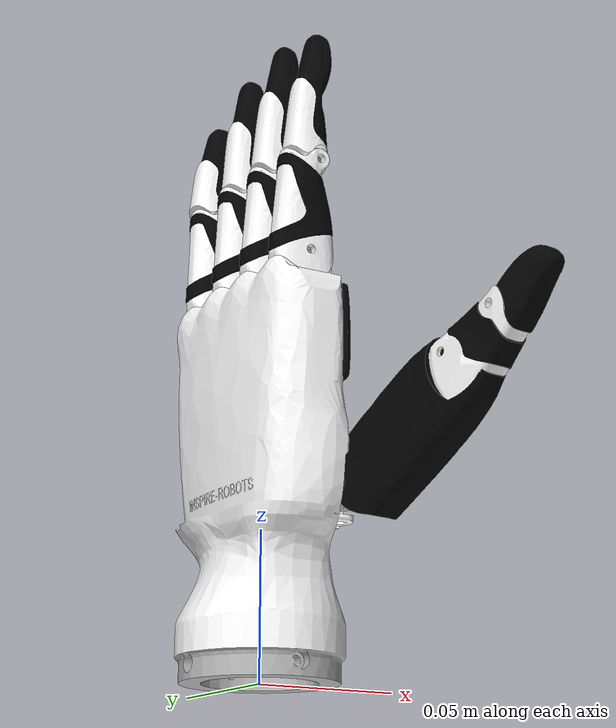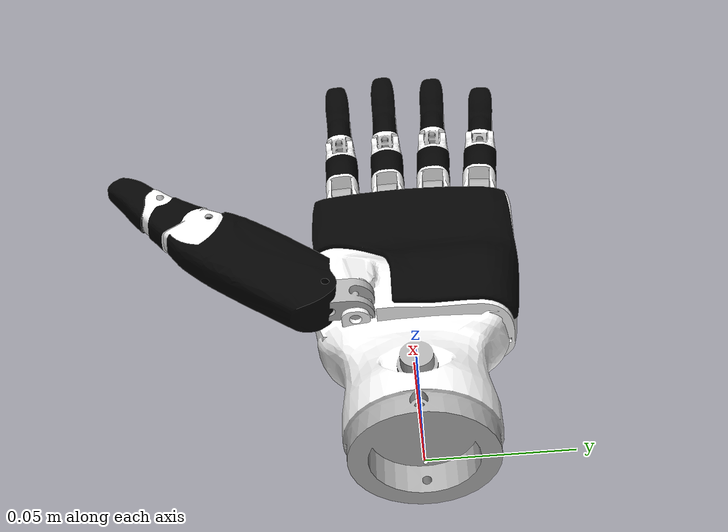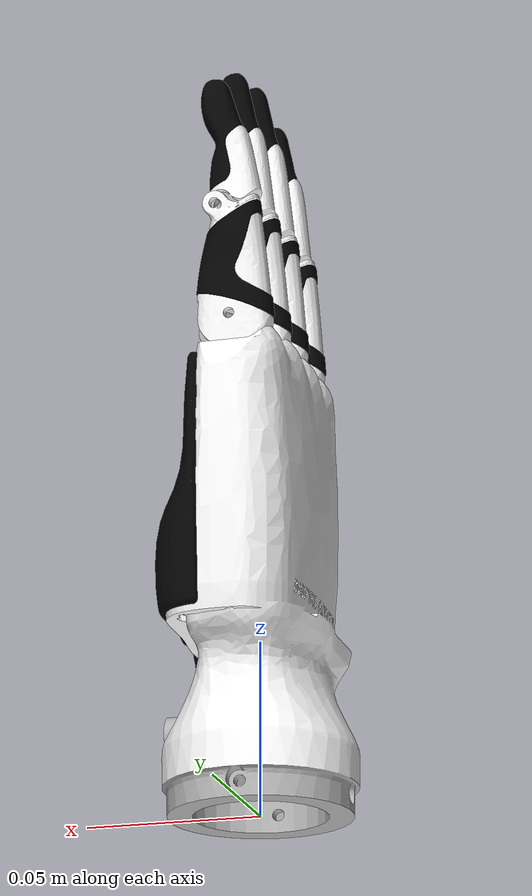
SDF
<sdf version='1.7'>
  <model name='inspire_hand_left'>
    <link name='base'>
      <inertial>
        <pose>0.002526 0.00196 0.066047 0 -0 0</pose>
        <mass>0.14143</mass>
        <inertia>
          <ixx>0.00012281</ixx>
          <ixy>1.77078e-06</ixy>
          <ixz>2.1711e-06</ixz>
          <iyy>7.6663e-05</iyy>
          <iyz>-1.65511e-06</iyz>
          <izz>8.3832e-05</izz>
        </inertia>
      </inertial>
      <collision name='base_fixed_joint_lump__hand_base_link_collision'>
        <pose>0 0 0.0136 -6e-06 0 3.14159</pose>
        <geometry>
          <cylinder>
            <length>0.0278</length>
            <radius>0.028</radius>
          </cylinder>
        </geometry>
        <surface>
          <contact>
            <ode/>
          </contact>
          <friction>
            <ode/>
          </friction>
        </surface>
      </collision>
      <collision name='base_fixed_joint_lump__hand_base_link_collision_1'>
        <pose>0.0032 -0 0.038 -1.5708 -0 3.14159</pose>
        <geometry>
          <box>
            <size>0.0391 0.0202 0.0574</size>
          </box>
        </geometry>
        <surface>
          <contact>
            <ode/>
          </contact>
          <friction>
            <ode/>
          </friction>
        </surface>
      </collision>
      <collision name='base_fixed_joint_lump__hand_base_link_collision_2'>
        <pose>0.0032 -0 0.0682 -1.5708 -0 3.14159</pose>
        <geometry>
          <box>
            <size>0.0391 0.04 0.0814</size>
          </box>
        </geometry>
        <surface>
          <contact>
            <ode/>
          </contact>
          <friction>
            <ode/>
          </friction>
        </surface>
      </collision>
      <collision name='base_fixed_joint_lump__hand_base_link_collision_3'>
        <pose>0 0 0.1081 -1.5708 -0 3.14159</pose>
        <geometry>
          <box>
            <size>0.0322 0.04 0.0814</size>
          </box>
        </geometry>
        <surface>
          <contact>
            <ode/>
          </contact>
          <friction>
            <ode/>
          </friction>
        </surface>
      </collision>
      <collision name='base_fixed_joint_lump__hand_base_link_collision_4'>
        <pose>0.0016 0.0309 0.134 -1.5708 -0 3.14159</pose>
        <geometry>
          <box>
            <size>0.0125 0.0111 0.0089</size>
          </box>
        </geometry>
        <surface>
          <contact>
            <ode/>
          </contact>
          <friction>
            <ode/>
          </friction>
        </surface>
      </collision>
      <collision name='base_fixed_joint_lump__hand_base_link_collision_5'>
        <pose>0.0016 0.0118 0.134 -1.5708 -0 3.14159</pose>
        <geometry>
          <box>
            <size>0.0125 0.0111 0.0089</size>
          </box>
        </geometry>
        <surface>
          <contact>
            <ode/>
          </contact>
          <friction>
            <ode/>
          </friction>
        </surface>
      </collision>
      <collision name='base_fixed_joint_lump__hand_base_link_collision_6'>
        <pose>0.0016 -0.007 0.134 -1.5708 -0 3.14159</pose>
        <geometry>
          <box>
            <size>0.0125 0.0111 0.0089</size>
          </box>
        </geometry>
        <surface>
          <contact>
            <ode/>
          </contact>
          <friction>
            <ode/>
          </friction>
        </surface>
      </collision>
      <collision name='base_fixed_joint_lump__hand_base_link_collision_7'>
        <pose>0.0016 -0.0262 0.134 -1.5708 -0 3.14159</pose>
        <geometry>
          <box>
            <size>0.0125 0.0111 0.0089</size>
          </box>
        </geometry>
        <surface>
          <contact>
            <ode/>
          </contact>
          <friction>
            <ode/>
          </friction>
        </surface>
      </collision>
      <visual name='base_fixed_joint_lump__hand_base_link_visual'>
        <pose>0 0 0 -1.5708 -0 3.14159</pose>
        <geometry>
          <mesh>
            <scale>1 1 1</scale>
            <uri>model://inspire_hand/meshes/visual/left_base_link.glb</uri>
          </mesh>
        </geometry>
      </visual>
      <self_collide>0</self_collide>
      <surface>
        <friction>
          <ode>
            <mu>0.5</mu>
            <mu2>0.5</mu2>
          </ode>
        </friction>
        <contact>
          <ode>
            <kp>1000000.0</kp>
            <kd>10.0</kd>
          </ode>
        </contact>
      </surface>
    </link>
    <joint name='index_proximal_joint' type='revolute'>
      <pose relative_to='base'>-0.000285 -0.032268 0.13653 -1.6057 -0 3.14159</pose>
      <parent>base</parent>
      <child>index_proximal</child>
      <axis>
        <xyz>0 0 -1</xyz>
        <limit>
          <lower>0</lower>
          <upper>1.47</upper>
          <effort>1</effort>
          <velocity>0.5</velocity>
        </limit>
        <dynamics>
          <spring_reference>0</spring_reference>
          <spring_stiffness>0</spring_stiffness>
        </dynamics>
      </axis>
    </joint>
    <link name='index_proximal'>
      <pose relative_to='index_proximal_joint'>0 0 0 0 -0 0</pose>
      <inertial>
        <pose>0.001226 -0.011942 -0.006 0 -0 0</pose>
        <mass>0.0042403</mass>
        <inertia>
          <ixx>6.6232e-07</ixx>
          <ixy>1.5775e-08</ixy>
          <ixz>1.8515e-12</ixz>
          <iyy>2.1146e-07</iyy>
          <iyz>5.0828e-12</iyz>
          <izz>6.9398e-07</izz>
        </inertia>
      </inertial>
      <collision name='index_proximal_collision'>
        <pose>0 0 0 0 -0 0</pose>
        <geometry>
          <mesh>
            <scale>1 1 1</scale>
            <uri>model://inspire_hand/meshes/collision/left_index_proximal.obj</uri>
          </mesh>
        </geometry>
        <surface>
          <contact>
            <ode/>
          </contact>
          <friction>
            <ode/>
          </friction>
        </surface>
      </collision>
      <visual name='index_proximal_visual'>
        <pose>0 0 0 0 -0 0</pose>
        <geometry>
          <mesh>
            <scale>1 1 1</scale>
            <uri>model://inspire_hand/meshes/visual/left_index_proximal.glb</uri>
          </mesh>
        </geometry>
      </visual>
      <self_collide>0</self_collide>
      <surface>
        <friction>
          <ode>
            <mu>0.5</mu>
            <mu2>0.5</mu2>
          </ode>
        </friction>
        <contact>
          <ode>
            <kp>1000000.0</kp>
            <kd>10.0</kd>
          </ode>
        </contact>
      </surface>
    </link>
    <joint name='index_intermediate_joint' type='revolute'>
      <pose relative_to='index_proximal'>-0.002614 -0.032026 -0.001 0 -0 0</pose>
      <parent>index_proximal</parent>
      <child>index_intermediate</child>
      <axis>
        <xyz>0 0 -1</xyz>
        <limit>
          <lower>-0.04545</lower>
          <upper>1.56</upper>
          <effort>1</effort>
          <velocity>0.5</velocity>
        </limit>
        <dynamics>
          <spring_reference>0</spring_reference>
          <spring_stiffness>0</spring_stiffness>
        </dynamics>
      </axis>
    </joint>
    <link name='index_intermediate'>
      <pose relative_to='index_intermediate_joint'>0 0 0 0 -0 0</pose>
      <inertial>
        <pose>0.00197 -0.019589 -0.005 0 -0 0</pose>
        <mass>0.0045683</mass>
        <inertia>
          <ixx>7.6111e-07</ixx>
          <ixy>-8.7637e-08</ixy>
          <ixz>-3.7751e-13</ixz>
          <iyy>9.6076e-08</iyy>
          <iyz>-9.9444e-13</iyz>
          <izz>7.8179e-07</izz>
        </inertia>
      </inertial>
      <collision name='index_intermediate_collision'>
        <pose>0 0 0 0 -0 0</pose>
        <geometry>
          <mesh>
            <scale>1 1 1</scale>
            <uri>model://inspire_hand/meshes/collision/left_index_intermediate.obj</uri>
          </mesh>
        </geometry>
        <surface>
          <contact>
            <ode/>
          </contact>
          <friction>
            <ode/>
          </friction>
        </surface>
      </collision>
      <visual name='index_intermediate_visual'>
        <pose>0 0 0 0 -0 0</pose>
        <geometry>
          <mesh>
            <scale>1 1 1</scale>
            <uri>model://inspire_hand/meshes/visual/left_index_intermediate.glb</uri>
          </mesh>
        </geometry>
      </visual>
      <self_collide>0</self_collide>
      <surface>
        <friction>
          <ode>
            <mu>0.5</mu>
            <mu2>0.5</mu2>
          </ode>
        </friction>
        <contact>
          <ode>
            <kp>1000000.0</kp>
            <kd>10.0</kd>
          </ode>
        </contact>
      </surface>
    </link>
    <joint name='middle_proximal_joint' type='revolute'>
      <pose relative_to='base'>-0.000285 -0.01295 0.1371 -1.5708 -0 3.14159</pose>
      <parent>base</parent>
      <child>middle_proximal</child>
      <axis>
        <xyz>0 0 -1</xyz>
        <limit>
          <lower>0</lower>
          <upper>1.47</upper>
          <effort>1</effort>
          <velocity>0.5</velocity>
        </limit>
        <dynamics>
          <spring_reference>0</spring_reference>
          <spring_stiffness>0</spring_stiffness>
        </dynamics>
      </axis>
    </joint>
    <link name='middle_proximal'>
      <pose relative_to='middle_proximal_joint'>0 0 0 0 -0 0</pose>
      <inertial>
        <pose>0.001297 -0.011934 -0.006 0 -0 0</pose>
        <mass>0.0042403</mass>
        <inertia>
          <ixx>6.6211e-07</ixx>
          <ixy>1.8461e-08</ixy>
          <ixz>1.8002e-12</ixz>
          <iyy>2.1167e-07</iyy>
          <iyz>6.6808e-12</iyz>
          <izz>6.9397e-07</izz>
        </inertia>
      </inertial>
      <collision name='middle_proximal_collision'>
        <pose>0 0 0 0 -0 0</pose>
        <geometry>
          <mesh>
            <scale>1 1 1</scale>
            <uri>model://inspire_hand/meshes/collision/left_index_proximal.obj</uri>
          </mesh>
        </geometry>
        <surface>
          <contact>
            <ode/>
          </contact>
          <friction>
            <ode/>
          </friction>
        </surface>
      </collision>
      <visual name='middle_proximal_visual'>
        <pose>0 0 0 0 -0 0</pose>
        <geometry>
          <mesh>
            <scale>1 1 1</scale>
            <uri>model://inspire_hand/meshes/visual/left_index_proximal.glb</uri>
          </mesh>
        </geometry>
      </visual>
      <self_collide>0</self_collide>
      <surface>
        <friction>
          <ode>
            <mu>0.5</mu>
            <mu2>0.5</mu2>
          </ode>
        </friction>
        <contact>
          <ode>
            <kp>1000000.0</kp>
            <kd>10.0</kd>
          </ode>
        </contact>
      </surface>
    </link>
    <joint name='middle_intermediate_joint' type='revolute'>
      <pose relative_to='middle_proximal'>-0.002423 -0.032041 -0.001 0 -0 0</pose>
      <parent>middle_proximal</parent>
      <child>middle_intermediate</child>
      <axis>
        <xyz>0 0 -1</xyz>
        <limit>
          <lower>-0.04545</lower>
          <upper>1.56</upper>
          <effort>1</effort>
          <velocity>0.5</velocity>
        </limit>
        <dynamics>
          <spring_reference>0</spring_reference>
          <spring_stiffness>0</spring_stiffness>
        </dynamics>
      </axis>
    </joint>
    <link name='middle_intermediate'>
      <pose relative_to='middle_intermediate_joint'>0 0 0 0 -0 0</pose>
      <inertial>
        <pose>0.001921 -0.020796 -0.005 0 -0 0</pose>
        <mass>0.0050396</mass>
        <inertia>
          <ixx>9.5822e-07</ixx>
          <ixy>-1.1425e-07</ixy>
          <ixz>-2.4791e-12</ixz>
          <iyy>1.0646e-07</iyy>
          <iyz>-5.9173e-12</iyz>
          <izz>9.8384e-07</izz>
        </inertia>
      </inertial>
      <collision name='middle_intermediate_collision'>
        <pose>0 0 0 0 -0 0</pose>
        <geometry>
          <mesh>
            <scale>1 1 1</scale>
            <uri>model://inspire_hand/meshes/collision/left_middle_intermediate.obj</uri>
          </mesh>
        </geometry>
        <surface>
          <contact>
            <ode/>
          </contact>
          <friction>
            <ode/>
          </friction>
        </surface>
      </collision>
      <visual name='middle_intermediate_visual'>
        <pose>0 0 0 0 -0 0</pose>
        <geometry>
          <mesh>
            <scale>1 1 1</scale>
            <uri>model://inspire_hand/meshes/visual/left_middle_intermediate.glb</uri>
          </mesh>
        </geometry>
      </visual>
      <self_collide>0</self_collide>
      <surface>
        <friction>
          <ode>
            <mu>0.5</mu>
            <mu2>0.5</mu2>
          </ode>
        </friction>
        <contact>
          <ode>
            <kp>1000000.0</kp>
            <kd>10.0</kd>
          </ode>
        </contact>
      </surface>
    </link>
    <joint name='pinky_proximal_joint' type='revolute'>
      <pose relative_to='base'>-0.000285 0.025488 0.13571 -1.46608 -0 3.14159</pose>
      <parent>base</parent>
      <child>pinky_proximal</child>
      <axis>
        <xyz>0 0 -1</xyz>
        <limit>
          <lower>0</lower>
          <upper>1.47</upper>
          <effort>1</effort>
          <velocity>0.5</velocity>
        </limit>
        <dynamics>
          <spring_reference>0</spring_reference>
          <spring_stiffness>0</spring_stiffness>
        </dynamics>
      </axis>
    </joint>
    <link name='pinky_proximal'>
      <pose relative_to='pinky_proximal_joint'>0 0 0 0 -0 0</pose>
      <inertial>
        <pose>0.001297 -0.011934 -0.006 0 -0 0</pose>
        <mass>0.0042403</mass>
        <inertia>
          <ixx>6.6211e-07</ixx>
          <ixy>1.8461e-08</ixy>
          <ixz>1.6907e-12</ixz>
          <iyy>2.1167e-07</iyy>
          <iyz>6.9334e-12</iyz>
          <izz>6.9397e-07</izz>
        </inertia>
      </inertial>
      <collision name='pinky_proximal_collision'>
        <pose>0 0 0 0 -0 0</pose>
        <geometry>
          <mesh>
            <scale>1 1 1</scale>
            <uri>model://inspire_hand/meshes/collision/left_index_proximal.obj</uri>
          </mesh>
        </geometry>
        <surface>
          <contact>
            <ode/>
          </contact>
          <friction>
            <ode/>
          </friction>
        </surface>
      </collision>
      <visual name='pinky_proximal_visual'>
        <pose>0 0 0 0 -0 0</pose>
        <geometry>
          <mesh>
            <scale>1 1 1</scale>
            <uri>model://inspire_hand/meshes/visual/left_index_proximal.glb</uri>
          </mesh>
        </geometry>
      </visual>
      <self_collide>0</self_collide>
      <surface>
        <friction>
          <ode>
            <mu>0.5</mu>
            <mu2>0.5</mu2>
          </ode>
        </friction>
        <contact>
          <ode>
            <kp>1000000.0</kp>
            <kd>10.0</kd>
          </ode>
        </contact>
      </surface>
    </link>
    <joint name='pinky_intermediate_joint' type='revolute'>
      <pose relative_to='pinky_proximal'>-0.002423 -0.032041 -0.001 0 -0 0</pose>
      <parent>pinky_proximal</parent>
      <child>pinky_intermediate</child>
      <axis>
        <xyz>0 0 -1</xyz>
        <limit>
          <lower>-0.04545</lower>
          <upper>1.56</upper>
          <effort>1</effort>
          <velocity>0.5</velocity>
        </limit>
        <dynamics>
          <spring_reference>0</spring_reference>
          <spring_stiffness>0</spring_stiffness>
        </dynamics>
      </axis>
    </joint>
    <link name='pinky_intermediate'>
      <pose relative_to='pinky_intermediate_joint'>0 0 0 0 -0 0</pose>
      <inertial>
        <pose>0.002475 -0.016203 -0.005003 0 -0 0</pose>
        <mass>0.0035996</mass>
        <inertia>
          <ixx>4.3913e-07</ixx>
          <ixy>-4.1418e-08</ixy>
          <ixz>3.7168e-11</ixz>
          <iyy>7.0247e-08</iyy>
          <iyz>-5.8613e-11</iyz>
          <izz>4.4867e-07</izz>
        </inertia>
      </inertial>
      <collision name='pinky_intermediate_collision'>
        <pose>0 0 0 0 -0 0</pose>
        <geometry>
          <mesh>
            <scale>1 1 1</scale>
            <uri>model://inspire_hand/meshes/collision/left_pinky_intermediate.obj</uri>
          </mesh>
        </geometry>
        <surface>
          <contact>
            <ode/>
          </contact>
          <friction>
            <ode/>
          </friction>
        </surface>
      </collision>
      <visual name='pinky_intermediate_visual'>
        <pose>0 0 0 0 -0 0</pose>
        <geometry>
          <mesh>
            <scale>1 1 1</scale>
            <uri>model://inspire_hand/meshes/visual/left_pinky_intermediate.glb</uri>
          </mesh>
        </geometry>
      </visual>
      <self_collide>0</self_collide>
      <surface>
        <friction>
          <ode>
            <mu>0.5</mu>
            <mu2>0.5</mu2>
          </ode>
        </friction>
        <contact>
          <ode>
            <kp>1000000.0</kp>
            <kd>10.0</kd>
          </ode>
        </contact>
      </surface>
    </link>
    <joint name='ring_proximal_joint' type='revolute'>
      <pose relative_to='base'>-0.000285 0.006287 0.13691 -1.51844 -0 3.14159</pose>
      <parent>base</parent>
      <child>ring_proximal</child>
      <axis>
        <xyz>0 0 -1</xyz>
        <limit>
          <lower>0</lower>
          <upper>1.47</upper>
          <effort>1</effort>
          <velocity>0.5</velocity>
        </limit>
        <dynamics>
          <spring_reference>0</spring_reference>
          <spring_stiffness>0</spring_stiffness>
        </dynamics>
      </axis>
    </joint>
    <link name='ring_proximal'>
      <pose relative_to='ring_proximal_joint'>0 0 0 0 -0 0</pose>
      <inertial>
        <pose>0.001297 -0.011934 -0.006 0 -0 0</pose>
        <mass>0.0042403</mass>
        <inertia>
          <ixx>6.6211e-07</ixx>
          <ixy>1.8461e-08</ixy>
          <ixz>1.5793e-12</ixz>
          <iyy>2.1167e-07</iyy>
          <iyz>6.6868e-12</iyz>
          <izz>6.9397e-07</izz>
        </inertia>
      </inertial>
      <collision name='ring_proximal_collision'>
        <pose>0 0 0 0 -0 0</pose>
        <geometry>
          <mesh>
            <scale>1 1 1</scale>
            <uri>model://inspire_hand/meshes/collision/left_index_proximal.obj</uri>
          </mesh>
        </geometry>
        <surface>
          <contact>
            <ode/>
          </contact>
          <friction>
            <ode/>
          </friction>
        </surface>
      </collision>
      <visual name='ring_proximal_visual'>
        <pose>0 0 0 0 -0 0</pose>
        <geometry>
          <mesh>
            <scale>1 1 1</scale>
            <uri>model://inspire_hand/meshes/visual/left_index_proximal.glb</uri>
          </mesh>
        </geometry>
      </visual>
      <self_collide>0</self_collide>
      <surface>
        <friction>
          <ode>
            <mu>0.5</mu>
            <mu2>0.5</mu2>
          </ode>
        </friction>
        <contact>
          <ode>
            <kp>1000000.0</kp>
            <kd>10.0</kd>
          </ode>
        </contact>
      </surface>
    </link>
    <joint name='ring_intermediate_joint' type='revolute'>
      <pose relative_to='ring_proximal'>-0.002423 -0.032041 -0.001 0 -0 0</pose>
      <parent>ring_proximal</parent>
      <child>ring_intermediate</child>
      <axis>
        <xyz>0 0 -1</xyz>
        <limit>
          <lower>-0.04545</lower>
          <upper>1.56</upper>
          <effort>1</effort>
          <velocity>0.5</velocity>
        </limit>
        <dynamics>
          <spring_reference>0</spring_reference>
          <spring_stiffness>0</spring_stiffness>
        </dynamics>
      </axis>
    </joint>
    <link name='ring_intermediate'>
      <pose relative_to='ring_intermediate_joint'>0 0 0 0 -0 0</pose>
      <inertial>
        <pose>0.002175 -0.019567 -0.005 0 -0 0</pose>
        <mass>0.0045683</mass>
        <inertia>
          <ixx>7.6286e-07</ixx>
          <ixy>-8.0635e-08</ixy>
          <ixz>-6.1562e-13</ixz>
          <iyy>9.431e-08</iyy>
          <iyz>-5.8619e-13</iyz>
          <izz>7.8177e-07</izz>
        </inertia>
      </inertial>
      <collision name='ring_intermediate_collision'>
        <pose>0 0 0 0 -0 0</pose>
        <geometry>
          <mesh>
            <scale>1 1 1</scale>
            <uri>model://inspire_hand/meshes/collision/left_index_intermediate.obj</uri>
          </mesh>
        </geometry>
        <surface>
          <contact>
            <ode/>
          </contact>
          <friction>
            <ode/>
          </friction>
        </surface>
      </collision>
      <visual name='ring_intermediate_visual'>
        <pose>0 0 0 0 -0 0</pose>
        <geometry>
          <mesh>
            <scale>1 1 1</scale>
            <uri>model://inspire_hand/meshes/visual/left_index_intermediate.glb</uri>
          </mesh>
        </geometry>
      </visual>
      <self_collide>0</self_collide>
      <surface>
        <friction>
          <ode>
            <mu>0.5</mu>
            <mu2>0.5</mu2>
          </ode>
        </friction>
        <contact>
          <ode>
            <kp>1000000.0</kp>
            <kd>10.0</kd>
          </ode>
        </contact>
      </surface>
    </link>
    <joint name='thumb_proximal_yaw_joint' type='revolute'>
      <pose relative_to='base'>0.01696 -0.02045 0.0691 4e-06 -0 -1.57079</pose>
      <parent>base</parent>
      <child>thumb_proximal_base</child>
      <axis>
        <xyz>0 0 1</xyz>
        <limit>
          <lower>0</lower>
          <upper>1.308</upper>
          <effort>1</effort>
          <velocity>0.5</velocity>
        </limit>
        <dynamics>
          <spring_reference>0</spring_reference>
          <spring_stiffness>0</spring_stiffness>
        </dynamics>
      </axis>
    </joint>
    <link name='thumb_proximal_base'>
      <pose relative_to='thumb_proximal_yaw_joint'>0 0 0 0 -0 0</pose>
      <inertial>
        <pose>0.004882 0.000938 -0.00722 0 -0 0</pose>
        <mass>0.0018869</mass>
        <inertia>
          <ixx>5.816e-08</ixx>
          <ixy>-1.4539e-08</ixy>
          <ixz>-4.491e-09</ixz>
          <iyy>7.9161e-08</iyy>
          <iyz>-1.8727e-09</iyz>
          <izz>6.7433e-08</izz>
        </inertia>
      </inertial>
      <collision name='thumb_proximal_base_collision'>
        <pose>0 0 0 0 -0 0</pose>
        <geometry>
          <mesh>
            <scale>1 1 1</scale>
            <uri>model://inspire_hand/meshes/collision/left_thumb_proximal_base.obj</uri>
          </mesh>
        </geometry>
        <surface>
          <contact>
            <ode/>
          </contact>
          <friction>
            <ode/>
          </friction>
        </surface>
      </collision>
      <visual name='thumb_proximal_base_visual'>
        <pose>0 0 0 0 -0 0</pose>
        <geometry>
          <mesh>
            <scale>1 1 1</scale>
            <uri>model://inspire_hand/meshes/visual/left_thumb_proximal_base.glb</uri>
          </mesh>
        </geometry>
      </visual>
      <self_collide>0</self_collide>
      <surface>
        <friction>
          <ode>
            <mu>0.5</mu>
            <mu2>0.5</mu2>
          </ode>
        </friction>
        <contact>
          <ode>
            <kp>1000000.0</kp>
            <kd>10.0</kd>
          </ode>
        </contact>
      </surface>
    </link>
    <joint name='thumb_proximal_pitch_joint' type='revolute'>
      <pose relative_to='thumb_proximal_base'>0.009987 0.009824 -0.0089 -1.5708 0 0.16939</pose>
      <parent>thumb_proximal_base</parent>
      <child>thumb_proximal</child>
      <axis>
        <xyz>0 0 -1</xyz>
        <limit>
          <lower>0</lower>
          <upper>0.6</upper>
          <effort>1</effort>
          <velocity>0.5</velocity>
        </limit>
        <dynamics>
          <spring_reference>0</spring_reference>
          <spring_stiffness>0</spring_stiffness>
        </dynamics>
      </axis>
    </joint>
    <link name='thumb_proximal'>
      <pose relative_to='thumb_proximal_pitch_joint'>0 0 0 0 -0 0</pose>
      <inertial>
        <pose>0.021932 -0.012785 -0.008039 0 -0 0</pose>
        <mass>0.0066075</mass>
        <inertia>
          <ixx>1.5686e-06</ixx>
          <ixy>7.8296e-07</ixy>
          <ixz>8.9143e-10</ixz>
          <iyy>1.7353e-06</iyy>
          <iyz>1.0191e-09</iyz>
          <izz>2.786e-06</izz>
        </inertia>
      </inertial>
      <collision name='thumb_proximal_collision'>
        <pose>0 0 0 0 -0 0</pose>
        <geometry>
          <mesh>
            <scale>1 1 1</scale>
            <uri>model://inspire_hand/meshes/collision/left_thumb_proximal.obj</uri>
          </mesh>
        </geometry>
        <surface>
          <contact>
            <ode/>
          </contact>
          <friction>
            <ode/>
          </friction>
        </surface>
      </collision>
      <visual name='thumb_proximal_visual'>
        <pose>0 0 0 0 -0 0</pose>
        <geometry>
          <mesh>
            <scale>1 1 1</scale>
            <uri>model://inspire_hand/meshes/visual/left_thumb_proximal.glb</uri>
          </mesh>
        </geometry>
      </visual>
      <self_collide>0</self_collide>
      <surface>
        <friction>
          <ode>
            <mu>0.5</mu>
            <mu2>0.5</mu2>
          </ode>
        </friction>
        <contact>
          <ode>
            <kp>1000000.0</kp>
            <kd>10.0</kd>
          </ode>
        </contact>
      </surface>
    </link>
    <joint name='thumb_intermediate_joint' type='revolute'>
      <pose relative_to='thumb_proximal'>0.04407 -0.034553 -0.0008 0 -0 0</pose>
      <parent>thumb_proximal</parent>
      <child>thumb_intermediate</child>
      <axis>
        <xyz>0 0 -1</xyz>
        <limit>
          <lower>0</lower>
          <upper>0.8</upper>
          <effort>1</effort>
          <velocity>0.5</velocity>
        </limit>
        <dynamics>
          <spring_reference>0</spring_reference>
          <spring_stiffness>0</spring_stiffness>
        </dynamics>
      </axis>
    </joint>
    <link name='thumb_intermediate'>
      <pose relative_to='thumb_intermediate_joint'>0 0 0 0 -0 0</pose>
      <inertial>
        <pose>0.009554 0.001628 -0.0072 0 -0 0</pose>
        <mass>0.0037847</mass>
        <inertia>
          <ixx>3.6981e-07</ixx>
          <ixy>9.8581e-08</ixy>
          <ixz>-4.7469e-12</ixz>
          <iyy>3.2394e-07</iyy>
          <iyz>-1.0939e-12</iyz>
          <izz>4.6531e-07</izz>
        </inertia>
      </inertial>
      <collision name='thumb_intermediate_collision'>
        <pose>0 0 0 0 -0 0</pose>
        <geometry>
          <mesh>
            <scale>1 1 1</scale>
            <uri>model://inspire_hand/meshes/collision/left_thumb_intermediate.obj</uri>
          </mesh>
        </geometry>
        <surface>
          <contact>
            <ode/>
          </contact>
          <friction>
            <ode/>
          </friction>
        </surface>
      </collision>
      <visual name='thumb_intermediate_visual'>
        <pose>0 0 0 0 -0 0</pose>
        <geometry>
          <mesh>
            <scale>1 1 1</scale>
            <uri>model://inspire_hand/meshes/visual/left_thumb_intermediate.glb</uri>
          </mesh>
        </geometry>
      </visual>
      <self_collide>0</self_collide>
      <surface>
        <friction>
          <ode>
            <mu>0.5</mu>
            <mu2>0.5</mu2>
          </ode>
        </friction>
        <contact>
          <ode>
            <kp>1000000.0</kp>
            <kd>10.0</kd>
          </ode>
        </contact>
      </surface>
    </link>
    <joint name='thumb_distal_joint' type='revolute'>
      <pose relative_to='thumb_intermediate'>0.020248 -0.010156 -0.0012 0 -0 0</pose>
      <parent>thumb_intermediate</parent>
      <child>thumb_distal</child>
      <axis>
        <xyz>0 0 -1</xyz>
        <limit>
          <lower>0</lower>
          <upper>0.4</upper>
          <effort>1</effort>
          <velocity>0.5</velocity>
        </limit>
        <dynamics>
          <spring_reference>0</spring_reference>
          <spring_stiffness>0</spring_stiffness>
        </dynamics>
      </axis>
    </joint>
    <link name='thumb_distal'>
      <pose relative_to='thumb_distal_joint'>0 0 0 0 -0 0</pose>
      <inertial>
        <pose>0.009289 -0.004953 -0.006003 0 -0 0</pose>
        <mass>0.0033441</mass>
        <inertia>
          <ixx>1.3632e-07</ixx>
          <ixy>5.6788e-08</ixy>
          <ixz>-9.2764e-11</ixz>
          <iyy>1.4052e-07</iyy>
          <iyz>1.2283e-10</iyz>
          <izz>2.0026e-07</izz>
        </inertia>
      </inertial>
      <collision name='thumb_distal_collision'>
        <pose>0 0 0 0 -0 0</pose>
        <geometry>
          <mesh>
            <scale>1 1 1</scale>
            <uri>model://inspire_hand/meshes/collision/left_thumb_distal.obj</uri>
          </mesh>
        </geometry>
        <surface>
          <contact>
            <ode/>
          </contact>
          <friction>
            <ode/>
          </friction>
        </surface>
      </collision>
      <visual name='thumb_distal_visual'>
        <pose>0 0 0 0 -0 0</pose>
        <geometry>
          <mesh>
            <scale>1 1 1</scale>
            <uri>model://inspire_hand/meshes/visual/left_thumb_distal.glb</uri>
          </mesh>
        </geometry>
      </visual>
      <self_collide>0</self_collide>
      <surface>
        <friction>
          <ode>
            <mu>0.5</mu>
            <mu2>0.5</mu2>
          </ode>
        </friction>
        <contact>
          <ode>
            <kp>1000000.0</kp>
            <kd>10.0</kd>
          </ode>
        </contact>
      </surface>
    </link>
    <static>0</static>
    <plugin name='gazebo_ros_control' filename='libgazebo_ros_control.so'/>
  </model>
</sdf>
